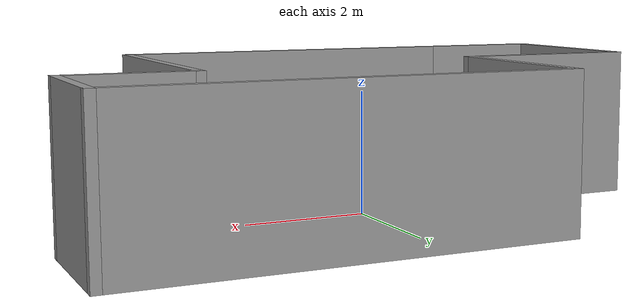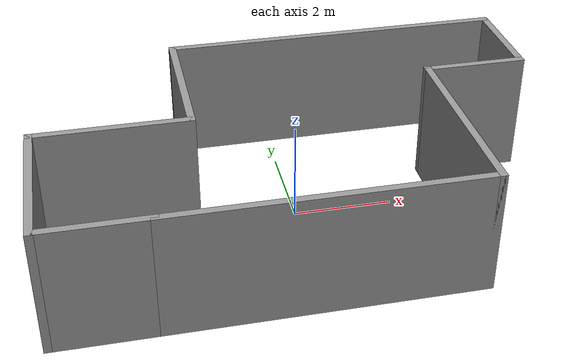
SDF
<?xml version='1.0'?>
<sdf version='1.6'>
  <model name='simple_walls'>
    <pose frame=''>3.3e-05 0 0 0 -0 0</pose>
    <link name='Wall_10'>
      <collision name='Wall_10_Collision'>
        <geometry>
          <box>
            <size>3.15 0.15 2.5</size>
          </box>
        </geometry>
        <pose frame=''>0 0 1.25 0 -0 0</pose>
      </collision>
      <visual name='Wall_10_Visual'>
        <pose frame=''>0 0 1.25 0 -0 0</pose>
        <geometry>
          <box>
            <size>3.15 0.15 2.5</size>
          </box>
        </geometry>
        <material>
          <script>
            <uri>file://media/materials/scripts/gazebo.material</uri>
            <name>Gazebo/Grey</name>
          </script>
          <ambient>1 1 1 1</ambient>
        </material>
        <meta>
          <layer>0</layer>
        </meta>
      </visual>
      <pose frame=''>-2.00003 1.5 0 0 0 -1.5708</pose>
    </link>
    <link name='Wall_11'>
      <collision name='Wall_11_Collision'>
        <geometry>
          <box>
            <size>3.15 0.15 2.5</size>
          </box>
        </geometry>
        <pose frame=''>0 0 1.25 0 -0 0</pose>
      </collision>
      <visual name='Wall_11_Visual'>
        <pose frame=''>0 0 1.25 0 -0 0</pose>
        <geometry>
          <box>
            <size>3.15 0.15 2.5</size>
          </box>
        </geometry>
        <material>
          <script>
            <uri>file://media/materials/scripts/gazebo.material</uri>
            <name>Gazebo/Grey</name>
          </script>
          <ambient>1 1 1 1</ambient>
        </material>
        <meta>
          <layer>0</layer>
        </meta>
      </visual>
      <pose frame=''>-3.50003 0 0 0 -0 3.14159</pose>
    </link>
    <link name='Wall_12'>
      <collision name='Wall_12_Collision'>
        <geometry>
          <box>
            <size>3.15 0.15 2.5</size>
          </box>
        </geometry>
        <pose frame=''>0 0 1.25 0 -0 0</pose>
      </collision>
      <visual name='Wall_12_Visual'>
        <pose frame=''>0 0 1.25 0 -0 0</pose>
        <geometry>
          <box>
            <size>3.15 0.15 2.5</size>
          </box>
        </geometry>
        <material>
          <script>
            <uri>file://media/materials/scripts/gazebo.material</uri>
            <name>Gazebo/Grey</name>
          </script>
          <ambient>1 1 1 1</ambient>
        </material>
        <meta>
          <layer>0</layer>
        </meta>
      </visual>
      <pose frame=''>-5.00003 -1.5 0 0 0 -1.5708</pose>
    </link>
    <link name='Wall_13'>
      <collision name='Wall_13_Collision'>
        <geometry>
          <box>
            <size>2.15 0.15 2.5</size>
          </box>
        </geometry>
        <pose frame=''>0 0 1.25 0 -0 0</pose>
      </collision>
      <visual name='Wall_13_Visual'>
        <pose frame=''>0 0 1.25 0 -0 0</pose>
        <geometry>
          <box>
            <size>2.15 0.15 2.5</size>
          </box>
        </geometry>
        <material>
          <script>
            <uri>file://media/materials/scripts/gazebo.material</uri>
            <name>Gazebo/Grey</name>
          </script>
          <ambient>1 1 1 1</ambient>
        </material>
        <meta>
          <layer>0</layer>
        </meta>
      </visual>
      <pose frame=''>-4.00003 -3 0 0 -0 0</pose>
    </link>
    <link name='Wall_2'>
      <collision name='Wall_2_Collision'>
        <geometry>
          <box>
            <size>6.15 0.15 2.5</size>
          </box>
        </geometry>
        <pose frame=''>0 0 1.25 0 -0 0</pose>
      </collision>
      <visual name='Wall_2_Visual'>
        <pose frame=''>0 0 1.25 0 -0 0</pose>
        <geometry>
          <box>
            <size>6.15 0.15 2.5</size>
          </box>
        </geometry>
        <material>
          <script>
            <uri>file://media/materials/scripts/gazebo.material</uri>
            <name>Gazebo/Grey</name>
          </script>
          <ambient>1 1 1 1</ambient>
        </material>
        <meta>
          <layer>0</layer>
        </meta>
      </visual>
      <pose frame=''>-3.3e-05 -3 0 0 -0 0</pose>
    </link>
    <link name='Wall_3'>
      <collision name='Wall_3_Collision'>
        <geometry>
          <box>
            <size>4.15 0.15 2.5</size>
          </box>
        </geometry>
        <pose frame=''>0 0 1.25 0 -0 0</pose>
      </collision>
      <visual name='Wall_3_Visual'>
        <pose frame=''>0 0 1.25 0 -0 0</pose>
        <geometry>
          <box>
            <size>4.15 0.15 2.5</size>
          </box>
        </geometry>
        <material>
          <script>
            <uri>file://media/materials/scripts/gazebo.material</uri>
            <name>Gazebo/Grey</name>
          </script>
          <ambient>1 1 1 1</ambient>
        </material>
        <meta>
          <layer>0</layer>
        </meta>
      </visual>
      <pose frame=''>2.99997 -1 0 0 -0 1.5708</pose>
    </link>
    <link name='Wall_7'>
      <collision name='Wall_7_Collision'>
        <geometry>
          <box>
            <size>2.15013 0.15 2.5</size>
          </box>
        </geometry>
        <pose frame=''>0 0 1.25 0 -0 0</pose>
      </collision>
      <visual name='Wall_7_Visual'>
        <pose frame=''>0 0 1.25 0 -0 0</pose>
        <geometry>
          <box>
            <size>2.15013 0.15 2.5</size>
          </box>
        </geometry>
        <material>
          <script>
            <uri>file://media/materials/scripts/gazebo.material</uri>
            <name>Gazebo/Grey</name>
          </script>
          <ambient>1 1 1 1</ambient>
        </material>
        <meta>
          <layer>0</layer>
        </meta>
      </visual>
      <pose frame=''>3.99997 1 0 0 -0 0</pose>
    </link>
    <link name='Wall_8'>
      <collision name='Wall_8_Collision'>
        <geometry>
          <box>
            <size>2.15 0.15 2.5</size>
          </box>
        </geometry>
        <pose frame=''>0 0 1.25 0 -0 0</pose>
      </collision>
      <visual name='Wall_8_Visual'>
        <pose frame=''>0 0 1.25 0 -0 0</pose>
        <geometry>
          <box>
            <size>2.15 0.15 2.5</size>
          </box>
        </geometry>
        <material>
          <script>
            <uri>file://media/materials/scripts/gazebo.material</uri>
            <name>Gazebo/Grey</name>
          </script>
          <ambient>1 1 1 1</ambient>
        </material>
        <meta>
          <layer>0</layer>
        </meta>
      </visual>
      <pose frame=''>4.99997 2 0 0 -0 1.5708</pose>
    </link>
    <link name='Wall_9'>
      <collision name='Wall_9_Collision'>
        <geometry>
          <box>
            <size>7.15 0.15 2.5</size>
          </box>
        </geometry>
        <pose frame=''>0 0 1.25 0 -0 0</pose>
      </collision>
      <visual name='Wall_9_Visual'>
        <pose frame=''>0 0 1.25 0 -0 0</pose>
        <geometry>
          <box>
            <size>7.15 0.15 2.5</size>
          </box>
        </geometry>
        <material>
          <script>
            <uri>file://media/materials/scripts/gazebo.material</uri>
            <name>Gazebo/Grey</name>
          </script>
          <ambient>1 1 1 1</ambient>
        </material>
        <meta>
          <layer>0</layer>
        </meta>
      </visual>
      <pose frame=''>1.49997 3 0 0 -0 3.14159</pose>
    </link>
    <static>1</static>
  </model>
</sdf>
